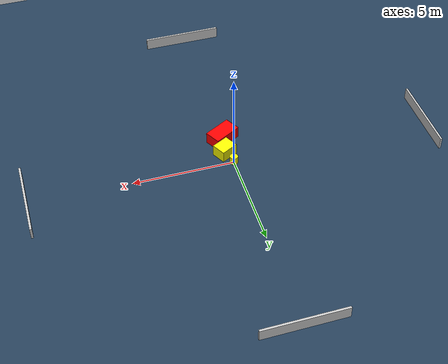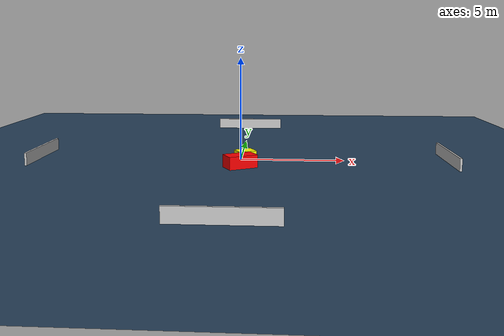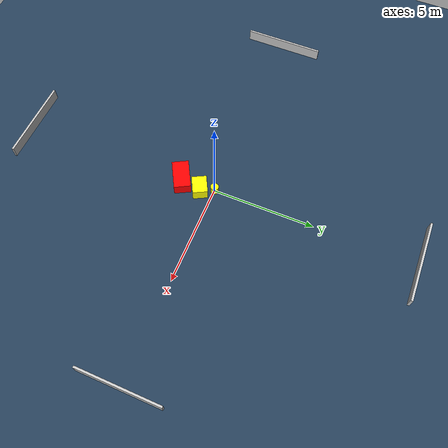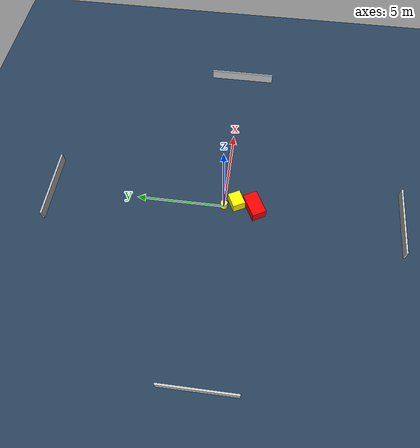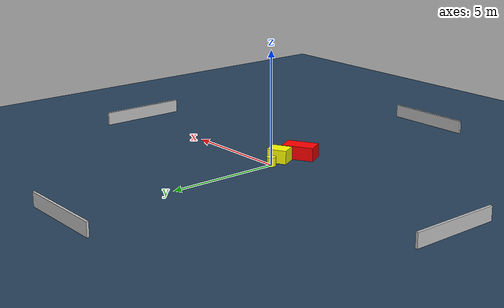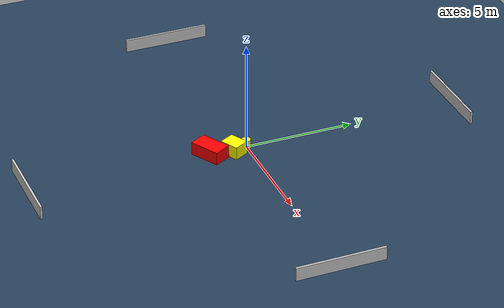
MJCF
<?xml version="1.0" ?>
<mujoco model="generated_environment">
  <option timestep="0.01" integrator="RK4" cone="elliptic"/>
  <default>
    <geom density="1"/>
  </default>
  <asset>
    <texture builtin="gradient" height="3072" name="skybox" rgb1="0.3 0.5 0.7" rgb2="0 0 0" type="skybox" width="512"/>
    <texture builtin="checker" height="300" name="groundplane" rgb1="0.2 0.3 0.4" rgb2="0.1 0.2 0.3" type="2d" width="300"/>
    <material name="groundplane" reflectance="0.2" texrepeat="5 5" texture="groundplane"/>
  </asset>
  <worldbody>
    <light dir="0 0 -1" directional="true" pos="0 0 1.5"/>
    <geom condim="3" friction="0.5 0.005 0.001" material="groundplane" name="floor" pos="0 0 0" size="0 0 0.05" type="plane"/>
    <body name="walls">
      <geom name="wall_1" condim="4" pos="-10.0 0.0 0.3" rgba="0.800000011920929 0.800000011920929 0.800000011920929 1.0" size="0.05 2.0 0.3" type="box"/>
      <geom name="wall_2" condim="4" pos="10.0 0.0 0.3" rgba="0.800000011920929 0.800000011920929 0.800000011920929 1.0" size="0.05 2.0 0.3" type="box"/>
      <geom name="wall_3" condim="4" pos="0.0 -10.0 0.3" rgba="0.800000011920929 0.800000011920929 0.800000011920929 1.0" size="2.0 0.05 0.3" type="box"/>
      <geom name="wall_4" condim="4" pos="0.0 10.0 0.3" rgba="0.800000011920929 0.800000011920929 0.800000011920929 1.0" size="2.0 0.05 0.3" type="box"/>
    </body>
    <body name="robot">
      <joint name="joint_x" type="slide" pos="0 0 0" axis="1 0 0"/>
      <joint name="joint_y" type="slide" pos="0 0 0" axis="0 1 0"/>
      <geom name="robot" type="cylinder" pos="0.0 0.0 0.2" size="0.2 0.2 0.0" mass="5.0" friction="1.0 0.005 0.0001" condim="4" rgba="1.0 1.0 0.0 1.0"/>
    </body>
    <body name="obstacle_1_movable">
      <geom name="obstacle_1_movable" condim="4" pos="0.2545270799212499 -0.6741776129373317 0.3" euler="0 0 297.61695360085815" friction="0.0 0.005 0.001" rgba="1.0 1.0 0.0 1.0" size="0.36129051646007615 0.43899942269474 0.3" type="box" mass="0.1"/>
      <joint type="free"/>
    </body>
    <body name="obstacle_2_static">
      <geom name="obstacle_2_static" condim="4" pos="0.07024464463902358 -1.7165076686232061 0.3" euler="0 0 28.720717180364275" friction="0.0 0.005 0.001" rgba="1.0 0.0 0.0 1.0" size="0.7085095751748398 0.40917863799798115 0.3" type="box"/>
    </body>
  </worldbody>
  <actuator>
    <motor name="actuator_x" joint="joint_x" gear="1" ctrlrange="-1 1"/>
    <motor name="actuator_y" joint="joint_y" gear="1" ctrlrange="-1 1"/>
  </actuator>
</mujoco>
